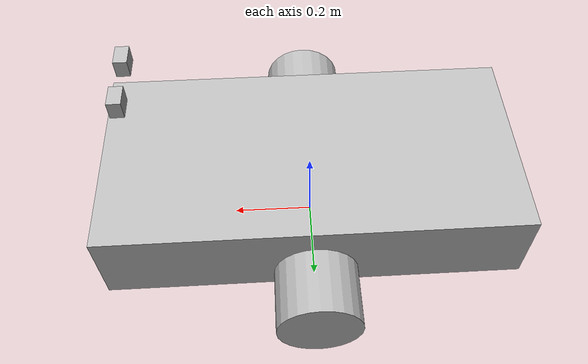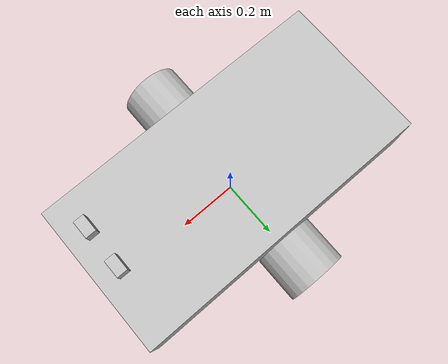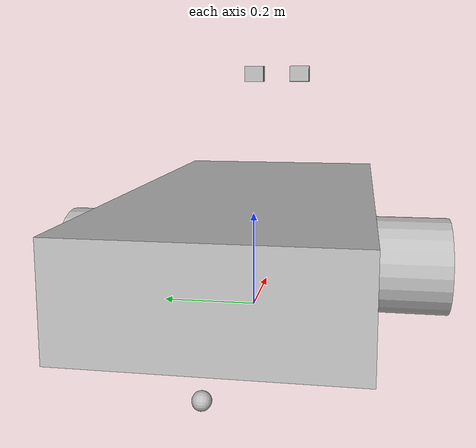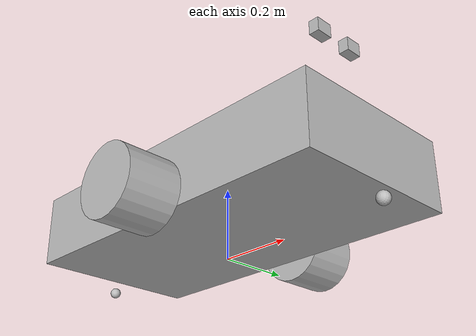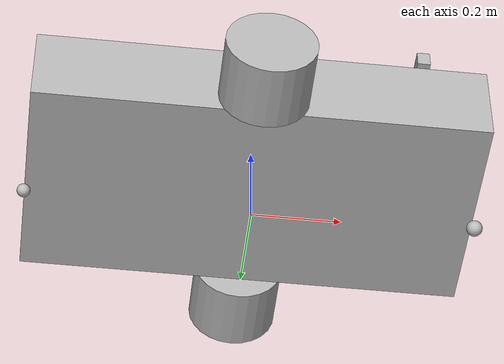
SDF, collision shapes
<?xml version="1.0" ?>
<sdf version="1.4">
  <model name="mobility_testbed">

    <link name="base">
      <inertial>
        <pose>0 0 0 0 0 0</pose>
        <inertia>
          <ixx>0.9</ixx>
          <ixy>0.009</ixy>
          <ixz>0.009</ixz>
          <iyy>0.9</iyy>
          <iyz>0.009</iyz>
          <izz>10.5</izz>
        </inertia>
        <mass>100</mass>
      </inertial>

      <collision name="base_collision">
        <pose>0 0 0.153 0 0 0</pose>
        <geometry>
	  <box>
	    <size>1 .5 .2</size>
	  </box>
        </geometry>
      </collision>

      <visual name="base_visual">
        <pose>0 0 0 0 0 -1.570700</pose>
        <geometry>
          <mesh>
            <uri>model://mobility_testbed/test-platform.dae</uri>
            <scale>.75 .75 .75</scale>
          </mesh>
        </geometry>
      </visual>

      <collision name="front_wheel_collision">
        <pose>0.5 0 0.017000 0 1.570700 1.570700</pose>
        <geometry>
          <sphere>
            <radius>0.018000</radius>
          </sphere>
        </geometry>
        <surface>
          <friction>
            <ode>
              <mu>0</mu>
              <mu2>0</mu2>
              <fdir1>0 0 0</fdir1>
              <slip1>0</slip1>
              <slip2>0</slip2>
            </ode>
          </friction>
        </surface>
      </collision>

      <collision name="rear_wheel_collision">
        <pose>-0.5 0 0.017 0 1.5707 1.5707</pose>
        <geometry>
          <sphere>
            <radius>0.015000</radius>
          </sphere>
        </geometry>
        <surface>
          <friction>
            <ode>
              <mu>0</mu>
              <mu2>0</mu2>
              <fdir1>0 0 0</fdir1>
              <slip1>0</slip1>
              <slip2>0</slip2>
            </ode>
          </friction>
        </surface>
      </collision>

    </link>

    <link name="left_wheel">
      <pose>0 0.33 0.1 0 0 0</pose>
      <inertial>
        <inertia>
          <ixx>0.1000</ixx>
          <ixy>0</ixy>
          <ixz>0</ixz>
          <iyy>0.1000</iyy>
          <iyz>0</iyz>
          <izz>0.1000</izz>
        </inertia>
        <mass>1</mass>
      </inertial>
      <collision name="collision">
        <pose>0 0 0 0 1.570700 1.570700</pose>
        <geometry>
          <cylinder>
            <radius>0.1</radius>
            <length>0.1524</length>
          </cylinder>
        </geometry>
        <surface>
          <friction>
            <ode>
              <mu>10</mu>
              <mu2>10</mu2>
              <fdir1>0 0 0</fdir1>
              <slip1>0</slip1>
              <slip2>0</slip2>
            </ode>
          </friction>
        </surface>
      </collision>
    </link>

    <link name="right_wheel">
      <pose>0 -0.33 0.1 0 0 0</pose>
      <inertial>
        <inertia>
          <ixx>0.1000</ixx>
          <ixy>0</ixy>
          <ixz>0</ixz>
          <iyy>0.1000</iyy>
          <iyz>0</iyz>
          <izz>0.1000</izz>
        </inertia>
        <mass>1</mass>
      </inertial>
      <collision name="collision">
        <pose>0 0 0 0 1.570700 1.570700</pose>
        <geometry>
          <cylinder>
            <radius>0.1</radius>
            <length>0.1524</length>
          </cylinder>
        </geometry>
        <surface>
          <friction>
            <ode>
              <mu>10</mu>
              <mu2>10</mu2>
              <fdir1>0 0 0</fdir1>
              <slip1>0</slip1>
              <slip2>0</slip2>
            </ode>
          </friction>
        </surface>
      </collision>
    </link>

    <joint name="left_wheel" type="revolute">
      <parent>base</parent>
      <child>left_wheel</child>
      <axis>
        <xyz>0 1 0</xyz>
      </axis>
    </joint>

    <joint name="right_wheel" type="revolute">
      <parent>base</parent>
      <child>right_wheel</child>
      <axis>
        <xyz>0 1 0</xyz>
      </axis>
    </joint>

<!-- start left camera definition -->
  <joint name="left_camera_joint" type="revolute">
      <parent>base</parent>
      <child>left_camera_link</child>
	  <axis>
	    <xyz>0 1 0</xyz>
	    <limit>
	      <upper>0</upper>
	      <lower>0</lower>
	    </limit>
	  </axis>
  </joint>
  <link name="left_camera_link">
	<collision name='collision'>
	  <pose>0.40 0.06 0.50 0 0 -1.5707</pose>
	  <geometry>
	    <box>
	      <size>.05 .03 .04</size>
	    </box>
	  </geometry>
	</collision>

	<visual name='visual'>
	  <pose>0.40 0.10 0.50 0 0 -1.5707</pose>
	  <geometry>
	    <box>
	      <size>.05 .03 .04</size>
	    </box>
	  </geometry>
	</visual>
    <sensor type="camera" name="left_camera">
	  <pose>0.40 0.06 0.50 0 0 0</pose>
      <update_rate>24.0</update_rate>
      <camera name="head">
        <horizontal_fov>1.3962634</horizontal_fov>
        <image>
          <width>800</width>
          <height>600</height>
          <format>R8G8B8</format>
        </image>
        <clip>
          <near>0.02</near>
          <far>300</far>
        </clip>
        <noise>
          <type>gaussian</type>
          <!-- Noise is sampled independently per pixel on each frame.
               That pixel's noise value is added to each of its color
               channels, which at that point lie in the range [0,1]. -->
          <mean>0.0</mean>
          <stddev>0.007</stddev>
        </noise>
      </camera>
      <plugin name="camera_controller" filename="libgazebo_ros_camera.so">
        <alwaysOn>true</alwaysOn>
        <updateRate>0.0</updateRate>
        <cameraName>/left_camera</cameraName>
        <imageTopicName>image_raw</imageTopicName>
        <cameraInfoTopicName>camera_info</cameraInfoTopicName>
        <frameName>left_camera_link</frameName>
        <hackBaseline>0.07</hackBaseline>
        <distortionK1>0.0</distortionK1>
        <distortionK2>0.0</distortionK2>
        <distortionK3>0.0</distortionK3>
        <distortionT1>0.0</distortionT1>
        <distortionT2>0.0</distortionT2>
      </plugin>
    </sensor>
  </link>
<!-- end camera definition -->

<!-- start right camera definition -->
  <joint name="right_camera_joint" type="revolute">
      <parent>base</parent>
      <child>right_camera_link</child>
	  <axis>
	    <xyz>0 1 0</xyz>
	    <limit>
	      <upper>0</upper>
	      <lower>0</lower>
	    </limit>
	  </axis>
  </joint>
  <link name="right_camera_link">
	<collision name='collision'>
	  <pose>0.40 -0.06 0.50 0 0 -1.5707</pose>
	  <geometry>
	    <box>
	      <size>.05 .03 .04</size>
	    </box>
	  </geometry>
	</collision>

	<visual name='visual'>
	  <pose>0.40 -0.06 0.50 0 0 -1.5707</pose>
	  <geometry>
	    <box>
	      <size>.05 .03 .04</size>
	    </box>
	  </geometry>
	</visual>
    <sensor type="camera" name="right_camera">
	  <pose>0.40 -0.10 0.50 0 0 0</pose>
      <update_rate>24.0</update_rate>
      <camera name="head">
        <horizontal_fov>1.3962634</horizontal_fov>
        <image>
          <width>800</width>
          <height>600</height>
          <format>R8G8B8</format>
        </image>
        <clip>
          <near>0.02</near>
          <far>300</far>
        </clip>
        <noise>
          <type>gaussian</type>
          <!-- Noise is sampled independently per pixel on each frame.
               That pixel's noise value is added to each of its color
               channels, which at that point lie in the range [0,1]. -->
          <mean>0.0</mean>
          <stddev>0.007</stddev>
        </noise>
      </camera>
      <plugin name="camera_controller" filename="libgazebo_ros_camera.so">
        <alwaysOn>true</alwaysOn>
        <updateRate>0.0</updateRate>
        <cameraName>/right_camera</cameraName>
        <imageTopicName>image_raw</imageTopicName>
        <cameraInfoTopicName>camera_info</cameraInfoTopicName>
        <frameName>right_camera_link</frameName>
        <hackBaseline>0.07</hackBaseline>
        <distortionK1>0.0</distortionK1>
        <distortionK2>0.0</distortionK2>
        <distortionK3>0.0</distortionK3>
        <distortionT1>0.0</distortionT1>
        <distortionT2>0.0</distortionT2>
      </plugin>
    </sensor>
  </link>
<!-- end camera definition -->

  <plugin name="differential_drive_controller" filename="libgazebo_ros_diff_drive.so">
    <alwaysOn>true</alwaysOn>
    <updateRate>10</updateRate>
    <leftJoint>left_wheel</leftJoint>
    <rightJoint>right_wheel</rightJoint>
    <wheelSeparation>0.6</wheelSeparation>
    <wheelDiameter>0.2</wheelDiameter>
    <torque>20</torque>
    <commandTopic>/cmd_vel</commandTopic>
    <odometryTopic>odom</odometryTopic>
    <odometryFrame>odom</odometryFrame>
    <robotBaseFrame>base_footprint</robotBaseFrame>
  </plugin>

  </model>
</sdf>
